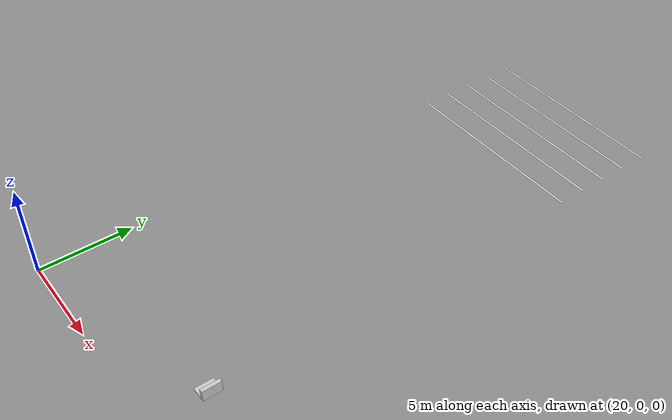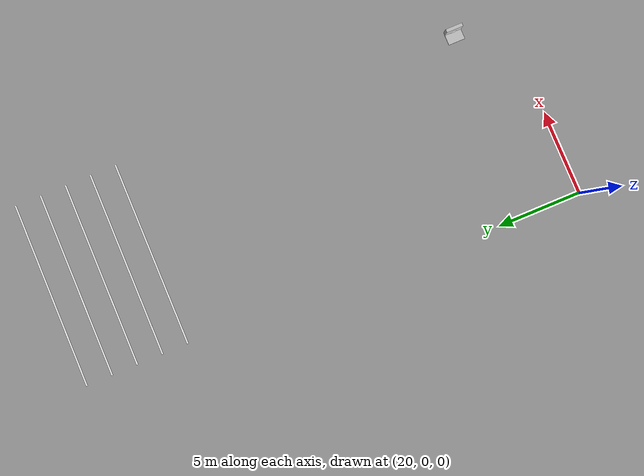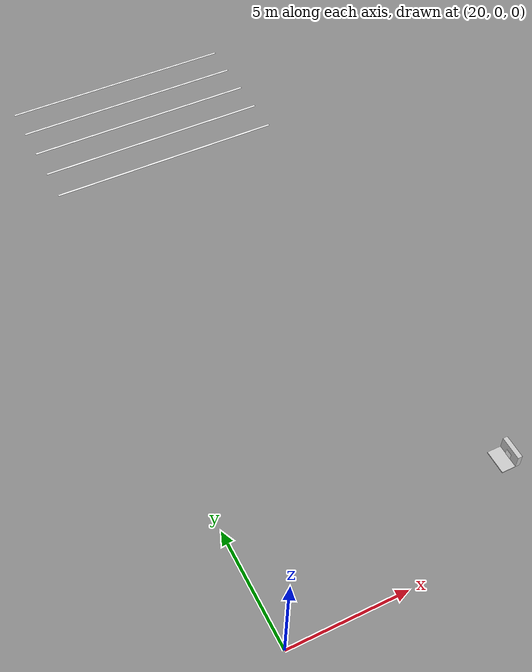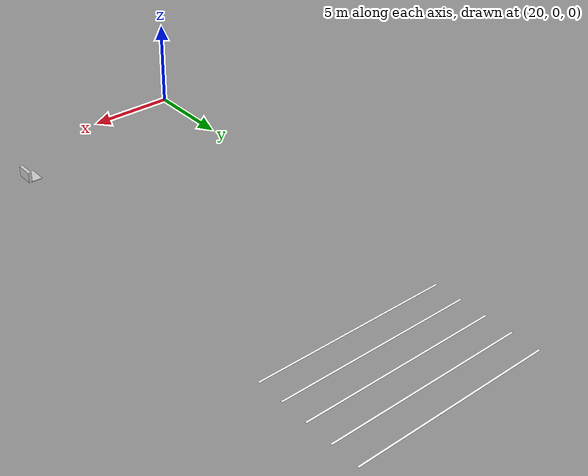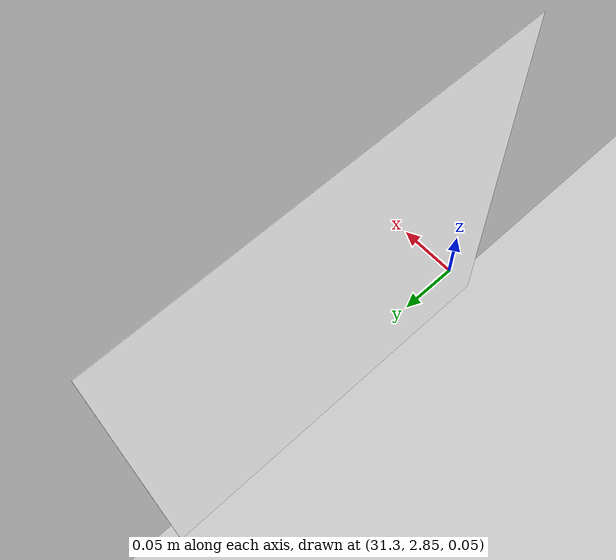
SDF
<sdf version="1.6">
 <world name="aan_farm">
  <scene>
   <grid>false</grid>
   <ambient>0.4 0.4 0.4 1</ambient>
   <background>0.7 0.7 0.7 1</background>
   <shadows>true</shadows>
  </scene>
  <spherical_coordinates>
   <surface_model>EARTH_WGS84</surface_model>
   <world_frame_orientation>ENU</world_frame_orientation>
   <latitude_deg>52.2184</latitude_deg>
   <longitude_deg>6.8753</longitude_deg>
   <elevation>0</elevation>
   <heading_deg>0</heading_deg>
  </spherical_coordinates>
  <physics name="1ms" type="ignored">
   <max_step_size>0.001</max_step_size>
   <real_time_factor>1.0</real_time_factor>
  </physics>
  <plugin filename="ignition-gazebo-physics-system" name="ignition::gazebo::systems::Physics"/>
  <plugin filename="ignition-gazebo-user-commands-system" name="ignition::gazebo::systems::UserCommands"/>
  <plugin filename="ignition-gazebo-scene-broadcaster-system" name="ignition::gazebo::systems::SceneBroadcaster"/>
  <plugin filename="ignition-gazebo-contact-system" name="ignition::gazebo::systems::Contact"/>
  <plugin filename="ignition-gazebo-sensors-system" name="ignition::gazebo::systems::Sensors">
   <render_engine>ogre2</render_engine>
  </plugin>
  <light type="directional" name="sun">
   <intensity>6</intensity>
   <pose>0 0 10 0 0 0</pose>
   <diffuse>0.8 0.8 0.8 1</diffuse>
   <specular>0.2 0.2 0.2 1</specular>
   <attenuation>
    <range>1000</range>
    <constant>0.9</constant>
    <linear>0.01</linear>
    <quadratic>0.001</quadratic>
   </attenuation>
   <direction>-0.5 0.1 -0.9</direction>
  </light>
  <model name="docking_station">
   <static>true</static>
   <pose>31.40 3 0.3 0 0 0</pose>
   <link name="vertical_link">
    <collision name="vertical_link_collision"><geometry><box><size>0.2 1.0 0.6</size></box></geometry></collision>
    <visual name="vertical_link_visual">
     <geometry><box><size>0.2 1.0 0.6</size></box></geometry>
     <material>
      <ambient>0.8 0.8 0.8 1</ambient>
      <diffuse>0.8 0.8 0.8 1</diffuse>
      <specular>0.8 0.8 0.8 1</specular>
     </material>
    </visual>
   </link>
   <link name="horizontal_link">
    <collision name="horizontal_link_collision">
     <pose>-0.4 0 -0.3 0 0 0</pose>
     <geometry><box><size>0.6 1.0 0.05</size></box></geometry>
    </collision>
    <visual name="horizontal_link_visual">
     <pose>-0.4 0 -0.3 0 0 0</pose>
     <geometry><box><size>0.6 1.0 0.05</size></box></geometry>
     <material>
      <ambient>0.8 0.8 0.8 1</ambient>
      <diffuse>0.8 0.8 0.8 1</diffuse>
      <specular>0.8 0.8 0.8 1</specular>
     </material>
    </visual>
   </link>
  </model>
  <model name="tag_plane">
   <static>true</static>
   <pose>31.28 3 0.2 0 0 0</pose>
   <link name="tag_link">
    <visual name="tag_visual">
     <geometry><plane><normal>-1 0 0</normal><size>0.3 0.3</size></plane></geometry>
     <material>
      <ambient>1 1 1 1</ambient>
      <diffuse>1 1 1 1</diffuse>
      <specular>0.8 0.8 1</specular>
      <pbr><metal><albedo_map>marker.jpeg</albedo_map><normal_map>marker.jpeg</normal_map></metal></pbr>
     </material>
    </visual>
   </link>
  </model>
  <model name="lanes_plane">
   <static>true</static>
   <pose>26.2 23.85 0.01 0 0 0</pose>
   <link name="lane1_link">
    <visual name="lane1_visual">
     <geometry><plane><normal>0 0 1</normal><size>11 0.1</size></plane></geometry>
     <material>
      <ambient>1 1 1 1</ambient>
      <diffuse>1 1 1 1</diffuse>
      <specular>0.8 0.8 1</specular>
      <pbr><metal><albedo_map>lane.jpg</albedo_map><normal_map>lane.jpg</normal_map></metal></pbr>
     </material>
    </visual>
   </link>
   <link name="lane2_link">
    <visual name="lane2_visual">
     <pose>0 1.53 0 0 0 0</pose>
     <geometry><plane><normal>0 0 1</normal><size>11 0.1</size></plane></geometry>
     <material>
      <ambient>1 1 1 1</ambient>
      <diffuse>1 1 1 1</diffuse>
      <specular>0.8 0.8 1</specular>
      <pbr><metal><albedo_map>lane.jpg</albedo_map><normal_map>lane.jpg</normal_map></metal></pbr>
     </material>
    </visual>
   </link>
   <link name="lane3_link">
    <visual name="lane3_visual">
     <pose>0 3.06 0 0 0 0</pose>
     <geometry><plane><normal>0 0 1</normal><size>11 0.1</size></plane></geometry>
     <material>
      <ambient>1 1 1 1</ambient>
      <diffuse>1 1 1 1</diffuse>
      <specular>0.8 0.8 1</specular>
      <pbr><metal><albedo_map>lane.jpg</albedo_map><normal_map>lane.jpg</normal_map></metal></pbr>
     </material>
    </visual>
   </link>
   <link name="lane4_link">
    <visual name="lane4_visual">
     <pose>0 4.59 0 0 0 0</pose>
     <geometry><plane><normal>0 0 1</normal><size>11 0.1</size></plane></geometry>
     <material>
      <ambient>1 1 1 1</ambient>
      <diffuse>1 1 1 1</diffuse>
      <specular>0.8 0.8 1</specular>
      <pbr><metal><albedo_map>lane.jpg</albedo_map><normal_map>lane.jpg</normal_map></metal></pbr>
     </material>
    </visual>
   </link>
   <link name="lane5_link">
    <visual name="lane5_visual">
     <pose>0 6.12 0 0 0 0</pose>
     <geometry><plane><normal>0 0 1</normal><size>11 0.1</size></plane></geometry>
     <material>
      <ambient>1 1 1 1</ambient>
      <diffuse>1 1 1 1</diffuse>
      <specular>0.8 0.8 1</specular>
      <pbr><metal><albedo_map>lane.jpg</albedo_map><normal_map>lane.jpg</normal_map></metal></pbr>
     </material>
    </visual>
   </link>
  </model>
 </world>
</sdf>
